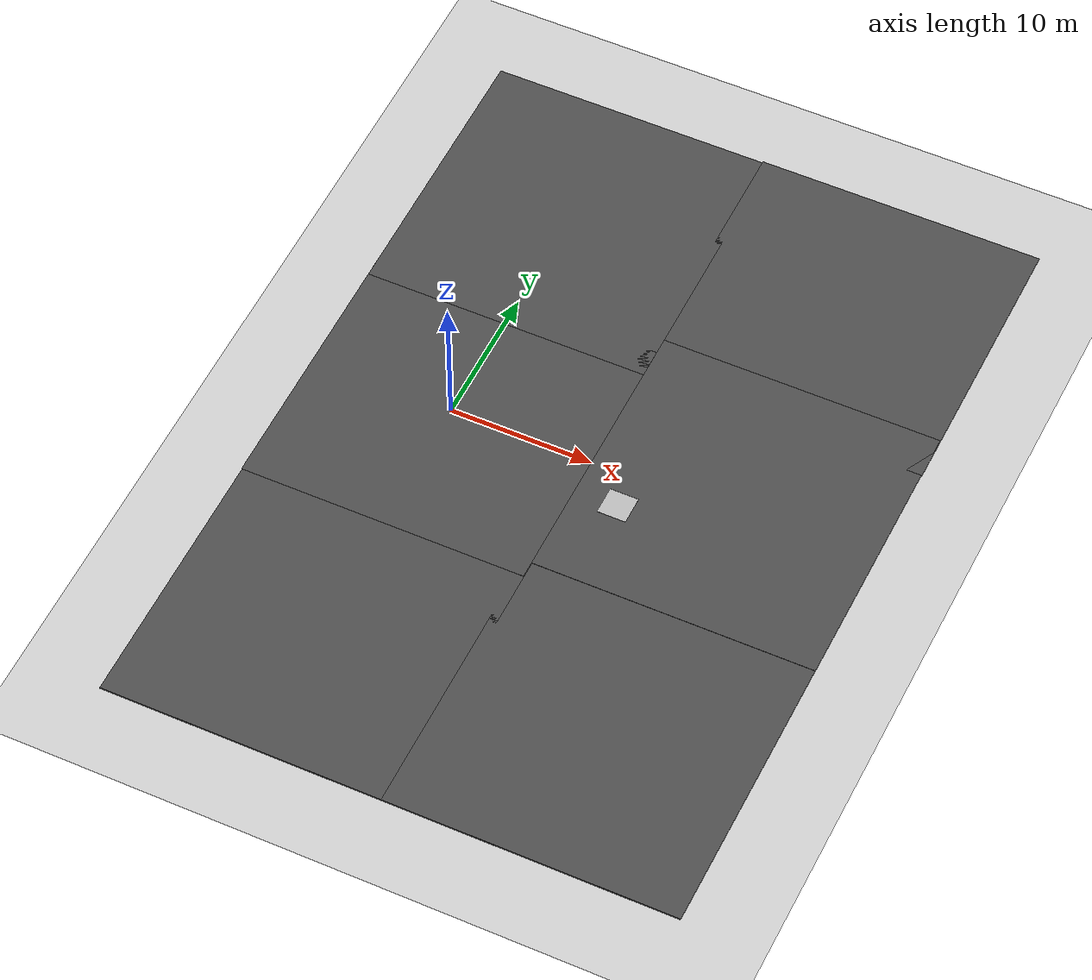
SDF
<sdf version="1.6">
 <world name="default">
  <light name="sun" type="directional">
   <pose>0 0 10 0 -0 0</pose>
   <diffuse>0.8 0.8 0.8 1</diffuse>
   <specular>0.2 0.2 0.2 1</specular>
   <attenuation>
    <range>1000</range>
    <constant>0.9</constant>
    <linear>0.01</linear>
    <quadratic>0.001</quadratic>
   </attenuation>
   <direction>-0.5 0.1 -0.9</direction>
  </light>
  <model name="ground_plane">
   <static>1</static>
   <link name="link">
    <collision name="collision">
     <geometry><plane><normal>0 0 1</normal><size>100 100</size></plane></geometry>
     <surface><friction><ode><mu>100</mu><mu2>50</mu2></ode></friction></surface>
    </collision>
    <visual name="visual">
     <cast_shadows>0</cast_shadows>
     <geometry><plane><normal>0 0 1</normal><size>100 100</size></plane></geometry>
     <material>
      <script><uri>file://media/materials/scripts/gazebo.material</uri><name>Gazebo/Grey</name></script>
     </material>
    </visual>
   </link>
  </model>
  <model name="asphalt_plane">
   <static>1</static>
   <link name="link">
    <collision name="collision"><geometry><box><size>20 20 0.1</size></box></geometry></collision>
    <visual name="visual">
     <cast_shadows>0</cast_shadows>
     <geometry><box><size>20 20 0.1</size></box></geometry>
     <material>
      <script>
       <uri>model://asphalt_plane/materials/scripts</uri>
       <uri>model://asphalt_plane/materials/textures</uri>
       <name>vrc/asphalt</name>
      </script>
     </material>
    </visual>
   </link>
  </model>
  <physics name="default_physics" default="0" type="ode">
   <ode>
    <solver>
     <type>quick</type>
     <iters>10</iters>
     <sor>1.3</sor>
     <use_dynamic_moi_rescaling>0</use_dynamic_moi_rescaling>
    </solver>
    <constraints>
     <cfm>0</cfm>
     <erp>0.2</erp>
     <contact_max_correcting_vel>100</contact_max_correcting_vel>
     <contact_surface_layer>0.001</contact_surface_layer>
    </constraints>
   </ode>
   <max_step_size>0.002</max_step_size>
   <real_time_factor>1</real_time_factor>
   <real_time_update_rate>500</real_time_update_rate>
  </physics>
  <gravity>0 0 -9.8066</gravity>
  <magnetic_field>6e-06 2.3e-05 -4.2e-05</magnetic_field>
  <atmosphere type="adiabatic"/>
  <scene><ambient>0.4 0.4 0.4 1</ambient><background>0.7 0.7 0.7 1</background><shadows>1</shadows></scene>
  <spherical_coordinates>
   <surface_model>EARTH_WGS84</surface_model>
   <latitude_deg>0</latitude_deg>
   <longitude_deg>0</longitude_deg>
   <elevation>0</elevation>
   <heading_deg>0</heading_deg>
  </spherical_coordinates>
  <model name="asphalt_plane_clone">
   <static>1</static>
   <link name="link">
    <collision name="collision"><geometry><box><size>20 20 0.1</size></box></geometry></collision>
    <visual name="visual">
     <cast_shadows>0</cast_shadows>
     <geometry><box><size>20 20 0.1</size></box></geometry>
     <material>
      <script>
       <uri>model://asphalt_plane/materials/scripts</uri>
       <uri>model://asphalt_plane/materials/textures</uri>
       <name>vrc/asphalt</name>
      </script>
     </material>
    </visual>
   </link>
   <pose>0.004413 17.948 0 0 -0 0</pose>
  </model>
  <model name="asphalt_plane_clone_0">
   <static>1</static>
   <link name="link">
    <collision name="collision"><geometry><box><size>20 20 0.1</size></box></geometry></collision>
    <visual name="visual">
     <cast_shadows>0</cast_shadows>
     <geometry><box><size>20 20 0.1</size></box></geometry>
     <material>
      <script>
       <uri>model://asphalt_plane/materials/scripts</uri>
       <uri>model://asphalt_plane/materials/textures</uri>
       <name>vrc/asphalt</name>
      </script>
     </material>
    </visual>
   </link>
   <pose>0.050773 -18.8446 0 0 -0 0</pose>
  </model>
  <model name="asphalt_plane_clone_1">
   <static>1</static>
   <link name="link">
    <collision name="collision"><geometry><box><size>20 20 0.1</size></box></geometry></collision>
    <visual name="visual">
     <cast_shadows>0</cast_shadows>
     <geometry><box><size>20 20 0.1</size></box></geometry>
     <material>
      <script>
       <uri>model://asphalt_plane/materials/scripts</uri>
       <uri>model://asphalt_plane/materials/textures</uri>
       <name>vrc/asphalt</name>
      </script>
     </material>
    </visual>
   </link>
   <pose>19.4886 -18.8475 0 0 -0 0</pose>
  </model>
  <model name="asphalt_plane_clone_2">
   <static>1</static>
   <link name="link">
    <collision name="collision"><geometry><box><size>20 20 0.1</size></box></geometry></collision>
    <visual name="visual">
     <cast_shadows>0</cast_shadows>
     <geometry><box><size>20 20 0.1</size></box></geometry>
     <material>
      <script>
       <uri>model://asphalt_plane/materials/scripts</uri>
       <uri>model://asphalt_plane/materials/textures</uri>
       <name>vrc/asphalt</name>
      </script>
     </material>
    </visual>
   </link>
   <pose>19.4976 1.16372 0 0 -0 0</pose>
  </model>
  <model name="asphalt_plane_clone_3">
   <static>1</static>
   <link name="link">
    <collision name="collision"><geometry><box><size>20 20 0.1</size></box></geometry></collision>
    <visual name="visual">
     <cast_shadows>0</cast_shadows>
     <geometry><box><size>20 20 0.1</size></box></geometry>
     <material>
      <script>
       <uri>model://asphalt_plane/materials/scripts</uri>
       <uri>model://asphalt_plane/materials/textures</uri>
       <name>vrc/asphalt</name>
      </script>
     </material>
    </visual>
   </link>
   <pose>19.5447 18.0543 0 0 -0 0</pose>
  </model>
  <model name="qrcode">
   <static>1</static>
   <pose>13.0134 -2.43815 0.1 0 0 -1.57119</pose>
   <link name="link">
    <collision name="collision">
     <geometry><plane><normal>0 0 1</normal><size>2 2</size></plane></geometry>
     <surface><friction><ode><mu>100</mu><mu2>50</mu2></ode></friction></surface>
    </collision>
    <visual name="visual">
     <cast_shadows>0</cast_shadows>
     <geometry><plane><normal>0 0 1</normal><size>2 2</size></plane></geometry>
     <material>
      <script>
       <uri>model://qrcode/materials/scripts</uri>
       <uri>model://qrcode/materials/textures/</uri>
       <name>qrcode/Image</name>
      </script>
     </material>
    </visual>
   </link>
  </model>
 </world>
</sdf>
